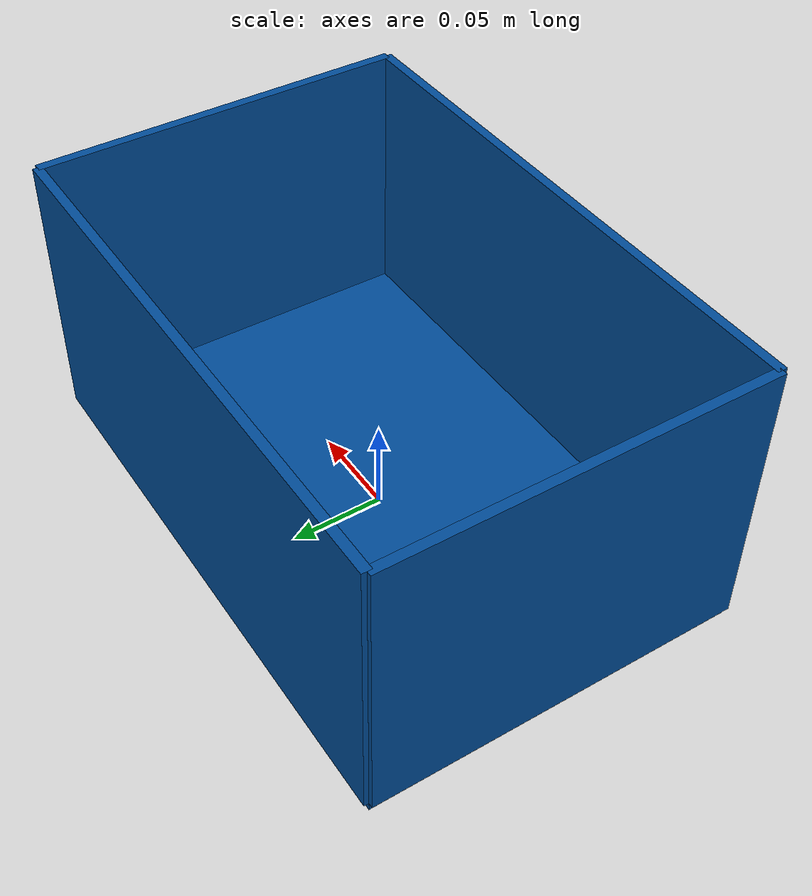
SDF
<?xml version="1.0" ?>
<sdf version="1.6">
    <model name='dropbox'>
      <static>true</static>
      <link name='link'>
        <pose>0 0 0 0 0 0</pose>

        <!-- Base -->
        <visual name='base'>
          <pose>0 0 0.005 0 0 0</pose> <!-- altura base / 2 -->
          <geometry>
            <box>
              <size>0.3 0.2 0.01</size>
            </box>
          </geometry>
          <material>
            <ambient>0 0.3 0.6 1</ambient>
          </material>
        </visual>
        <collision name='base_collision'>
          <pose>0 0 0.005 0 0 0</pose>
          <geometry>
            <box>
              <size>0.3 0.2 0.01</size>
            </box>
          </geometry>
        </collision>

        <!-- Pared frontal -->
        <visual name='wall1'>
          <pose>0 0.1 0.08 0 0 0</pose> <!-- base altura: 0.005 + pared mitad altura: 0.075 -->
          <geometry>
            <box>
              <size>0.3 0.005 0.15</size>
            </box>
          </geometry>
          <material>
            <ambient>0 0.3 0.6 1</ambient>
          </material>
        </visual>
        <collision name='wall1_collision'>
          <pose>0 0.1 0.08 0 0 0</pose>
          <geometry>
            <box>
              <size>0.3 0.005 0.15</size>
            </box>
          </geometry>
        </collision>

        <!-- Pared trasera -->
        <visual name='wall2'>
          <pose>0 -0.1 0.08 0 0 0</pose>
          <geometry>
            <box>
              <size>0.3 0.005 0.15</size>
            </box>
          </geometry>
          <material>
            <ambient>0 0.3 0.6 1</ambient>
          </material>
        </visual>
        <collision name='wall2_collision'>
          <pose>0 -0.1 0.08 0 0 0</pose>
          <geometry>
            <box>
              <size>0.3 0.005 0.15</size>
            </box>
          </geometry>
        </collision>

        <!-- Pared izquierda -->
        <visual name='wall3'>
          <pose>0.15 0 0.08 0 0 0</pose>
          <geometry>
            <box>
              <size>0.005 0.2 0.15</size>
            </box>
          </geometry>
          <material>
            <ambient>0 0.3 0.6 1</ambient>
          </material>
        </visual>
        <collision name='wall3_collision'>
          <pose>0.15 0 0.08 0 0 0</pose>
          <geometry>
            <box>
              <size>0.005 0.2 0.15</size>
            </box>
          </geometry>
        </collision>

        <!-- Pared derecha -->
        <visual name='wall4'>
          <pose>-0.15 0 0.08 0 0 0</pose>
          <geometry>
            <box>
              <size>0.005 0.2 0.15</size>
            </box>
          </geometry>
          <material>
            <ambient>0 0.3 0.6 1</ambient>
          </material>
        </visual>
        <collision name='wall4_collision'>
          <pose>-0.15 0 0.08 0 0 0</pose>
          <geometry>
            <box>
              <size>0.005 0.2 0.15</size>
            </box>
          </geometry>
        </collision>

      </link>
    </model>
</sdf>
